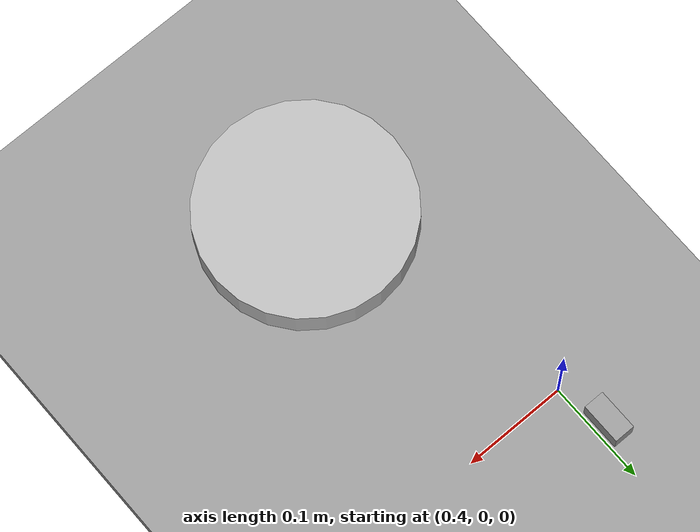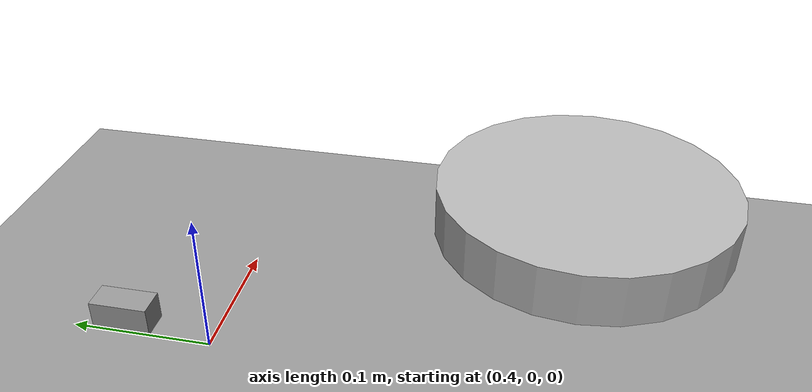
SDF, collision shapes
<?xml version='1.0'?>
<sdf version='1.7'>
  <model name='pick_place'>
    <model name='pick_place_items'>
      <model name='USB'>
        <link name='link_0'>
          <inertial>
            <mass>1</mass>
            <inertia>
              <ixx>0.166667</ixx>
              <ixy>0</ixy>
              <ixz>0</ixz>
              <iyy>0.166667</iyy>
              <iyz>0</iyz>
              <izz>0.166667</izz>
            </inertia>
            <pose>0 0 0 0 -0 0</pose>
          </inertial>
          <pose>0 -0 0 0 -0 0</pose>
          <gravity>1</gravity>
          <self_collide>0</self_collide>
          <kinematic>0</kinematic>
          <enable_wind>0</enable_wind>
          <visual name='visual'>
            <pose>0 0 0 0 -0 0</pose>
            <geometry>
              <box>
                <size>0.02 0.04 0.02</size>
              </box>
            </geometry>
            <material>
              <lighting>1</lighting>
              <script>
                <uri>file://media/materials/scripts/gazebo.material</uri>
                <name>Gazebo/Grey</name>
              </script>
              <shader type='pixel'>
                <normal_map>__default__</normal_map>
              </shader>
              <ambient>0.3 0.3 0.3 1</ambient>
              <diffuse>0.7 0.7 0.7 1</diffuse>
              <specular>0.01 0.01 0.01 1</specular>
              <emissive>0 0 0 1</emissive>
            </material>
            <transparency>0</transparency>
            <cast_shadows>1</cast_shadows>
          </visual>
          <collision name='collision'>
            <laser_retro>0</laser_retro>
            <max_contacts>10</max_contacts>
            <pose>0 0 0 0 -0 0</pose>
            <geometry>
              <box>
                <size>0.02 0.04 0.02</size>
              </box>
            </geometry>
            <surface>
              <friction>
                <ode>
                  <mu>1</mu>
                  <mu2>1</mu2>
                  <fdir1>0 0 0</fdir1>
                  <slip1>0</slip1>
                  <slip2>0</slip2>
                </ode>
                <torsional>
                  <coefficient>1</coefficient>
                  <patch_radius>0</patch_radius>
                  <surface_radius>0</surface_radius>
                  <use_patch_radius>1</use_patch_radius>
                  <ode>
                    <slip>0</slip>
                  </ode>
                </torsional>
              </friction>
              <bounce>
                <restitution_coefficient>0</restitution_coefficient>
                <threshold>1e+06</threshold>
              </bounce>
              <contact>
                <collide_without_contact>0</collide_without_contact>
                <collide_without_contact_bitmask>1</collide_without_contact_bitmask>
                <collide_bitmask>1</collide_bitmask>
                <ode>
                  <soft_cfm>0</soft_cfm>
                  <soft_erp>0.2</soft_erp>
                  <kp>1e+13</kp>
                  <kd>1</kd>
                  <max_vel>0.01</max_vel>
                  <min_depth>0</min_depth>
                </ode>
                <bullet>
                  <split_impulse>1</split_impulse>
                  <split_impulse_penetration_threshold>-0.01</split_impulse_penetration_threshold>
                  <soft_cfm>0</soft_cfm>
                  <soft_erp>0.2</soft_erp>
                  <kp>1e+13</kp>
                  <kd>1</kd>
                </bullet>
              </contact>
            </surface>
          </collision>
        </link>
        <static>0</static>
        <allow_auto_disable>1</allow_auto_disable>
        <pose>-0.044562 0.145971 -0.023294 0 -0 0</pose>
      </model>
      <model name='bowl'>
        <link name='link'>
          <inertial>
            <pose>0 0 0.0175 0 -0 0</pose>
            <mass>0.1</mass>
            <inertia>
              <ixx>0.000250308</ixx>
              <ixy>0</ixy>
              <ixz>0</ixz>
              <iyy>0.000250308</iyy>
              <iyz>0</iyz>
              <izz>0.0004802</izz>
            </inertia>
          </inertial>
          <collision name='collision'>
            <pose>0 0 0.0175 0 -0 0</pose>
            <geometry>
              <cylinder>
                <radius>0.098</radius>
                <length>0.035</length>
              </cylinder>
            </geometry>
          </collision>
          <visual name='visual'>
            <geometry>
              <mesh>
                <uri>model://bowl/meshes/bowl.dae</uri>
              </mesh>
            </geometry>
          </visual>
        </link>
        <pose>0.044562 -0.145971 0.023294 0 -0 0</pose>
      </model>
      <static>0</static>
      <allow_auto_disable>1</allow_auto_disable>
      <pose>0.435312 -0.093687 0.051983 0 -0 0</pose>
    </model>
    <model name='floor'>
      <link name='link_1'>
        <inertial>
          <mass>0.0928266</mass>
          <inertia>
            <ixx>0.0239246</ixx>
            <ixy>0</ixy>
            <ixz>0</ixz>
            <iyy>0.0532932</iyy>
            <iyz>0</iyz>
            <izz>0.0772116</izz>
          </inertia>
          <pose>0 0 0 0 -0 0</pose>
        </inertial>
        <pose>0 0 -0 0 -0 0</pose>
        <visual name='visual'>
          <pose>0 0 0 0 -0 0</pose>
          <geometry>
            <box>
              <size>2.62469 1.75852 0.019998</size>
            </box>
          </geometry>
          <material>
            <lighting>1</lighting>
            <script>
              <uri>file://media/materials/scripts/gazebo.material</uri>
              <name>Gazebo/Grey</name>
            </script>
            <shader type='pixel'/>
          </material>
          <transparency>0</transparency>
          <cast_shadows>1</cast_shadows>
        </visual>
        <collision name='collision'>
          <laser_retro>0</laser_retro>
          <max_contacts>10</max_contacts>
          <pose>0 0 0 0 -0 0</pose>
          <geometry>
            <box>
              <size>2.62469 1.75852 0.019998</size>
            </box>
          </geometry>
          <surface>
            <friction>
              <ode>
                <mu>1</mu>
                <mu2>1</mu2>
                <fdir1>0 0 0</fdir1>
                <slip1>0</slip1>
                <slip2>0</slip2>
              </ode>
              <torsional>
                <coefficient>1</coefficient>
                <patch_radius>0</patch_radius>
                <surface_radius>0</surface_radius>
                <use_patch_radius>1</use_patch_radius>
                <ode>
                  <slip>0</slip>
                </ode>
              </torsional>
            </friction>
            <bounce>
              <restitution_coefficient>0</restitution_coefficient>
              <threshold>1e+06</threshold>
            </bounce>
            <contact>
              <collide_without_contact>0</collide_without_contact>
              <collide_without_contact_bitmask>1</collide_without_contact_bitmask>
              <collide_bitmask>1</collide_bitmask>
              <ode>
                <soft_cfm>0</soft_cfm>
                <soft_erp>0.2</soft_erp>
                <kp>1e+13</kp>
                <kd>1</kd>
                <max_vel>0.01</max_vel>
                <min_depth>0</min_depth>
              </ode>
              <bullet>
                <split_impulse>1</split_impulse>
                <split_impulse_penetration_threshold>-0.01</split_impulse_penetration_threshold>
                <soft_cfm>0</soft_cfm>
                <soft_erp>0.2</soft_erp>
                <kp>1e+13</kp>
                <kd>1</kd>
              </bullet>
            </contact>
          </surface>
        </collision>
      </link>
      <static>0</static>
      <allow_auto_disable>1</allow_auto_disable>
      <pose>-0.435312 0.093688 -0.051983 0 -0 0</pose>
    </model>
    <static>0</static>
    <allow_auto_disable>1</allow_auto_disable>
  </model>
</sdf>
